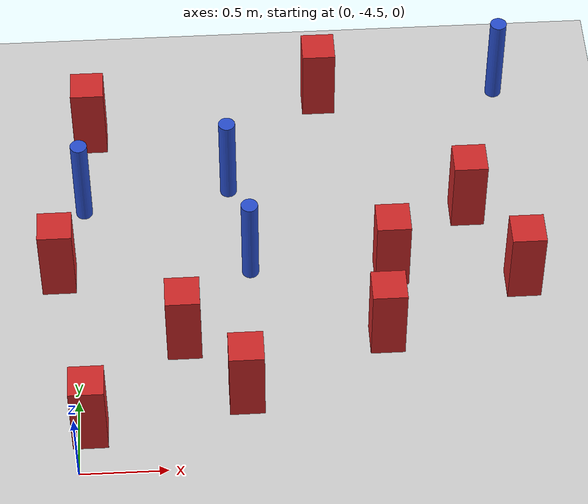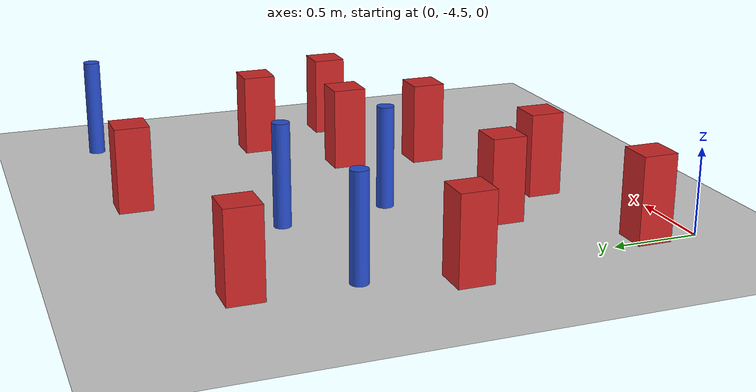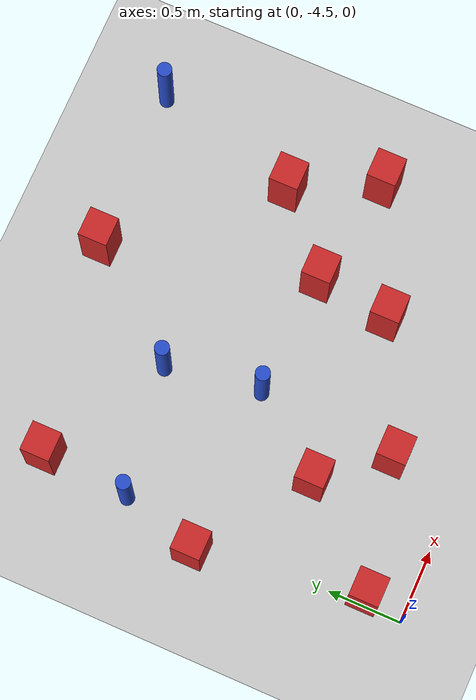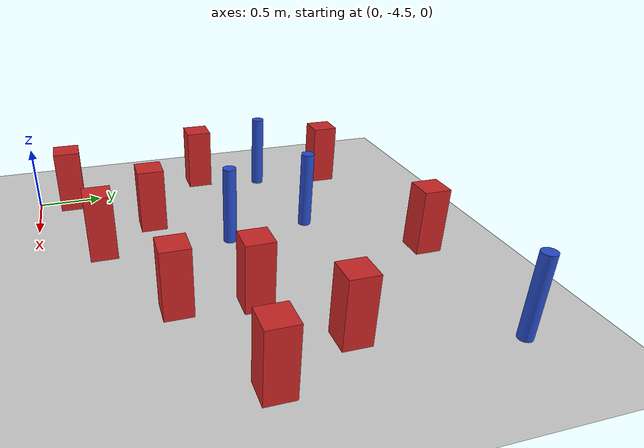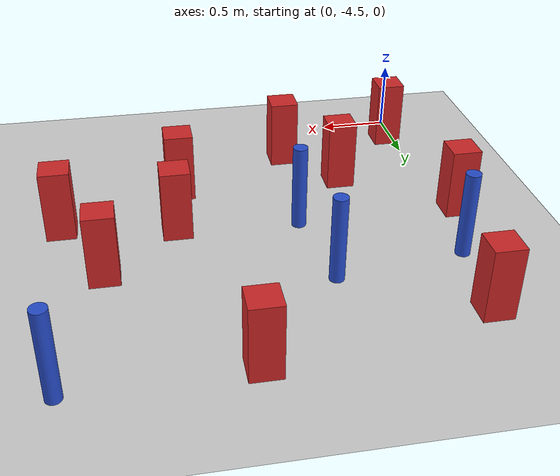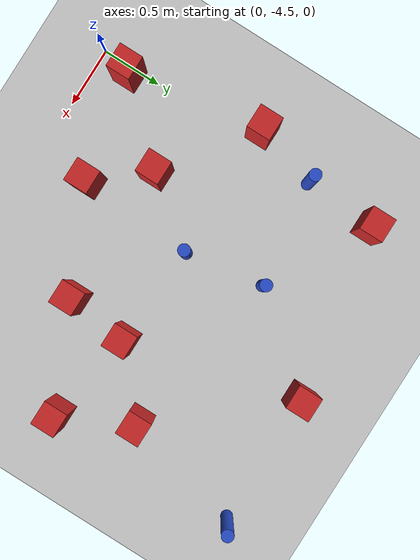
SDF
<sdf version="1.6">
 <world name="default">
  <model name="ground_plane">
   <static>1</static>
   <link name="link">
    <collision name="collision">
     <geometry><plane><normal>0 0 1</normal><size>100 100</size></plane></geometry>
     <surface><friction><ode><mu>100</mu><mu2>50</mu2></ode></friction></surface>
    </collision>
    <visual name="visual">
     <cast_shadows>0</cast_shadows>
     <geometry><plane><normal>0 0 1</normal><size>100 100</size></plane></geometry>
     <material>
      <ambient>1.0 1.0 1.0 1.0</ambient>
      <diffuse>0.8 0.8 0.8 1.0</diffuse>
      <specular>0.01 0.01 0.01 1.000000</specular>
     </material>
    </visual>
   </link>
  </model>
  <model name="square_post_obstacle9">
   <static>true</static>
   <pose>0.956388180386 -4.03698732437 8.22691968438e-08 7.22125133819e-06 -7.54495500217e-07 2.29674213826e-05</pose>
   <link name="link">
    <pose>0 0 0.25 0 -0 0</pose>
    <inertial>
     <mass>100</mass>
     <inertia>
      <ixx>0.166667</ixx>
      <ixy>0</ixy>
      <ixz>0</ixz>
      <iyy>0.166667</iyy>
      <iyz>0</iyz>
      <izz>0.166667</izz>
     </inertia>
    </inertial>
    <collision name="collision"><geometry><box><size>.2 .2 .5</size></box></geometry></collision>
    <visual name="visual">
     <geometry><box><size>.2 .2 .5</size></box></geometry>
     <material>
      <script><name>Gazebo/Red</name><uri>file://media/materials/scripts/gazebo.material</uri></script>
     </material>
    </visual>
   </link>
  </model>
  <model name="square_post_obstacle20">
   <static>true</static>
   <pose>2.62762132053 -3.26762497386 8.22691968438e-08 7.2212513382e-06 -7.54495500217e-07 2.29674213826e-05</pose>
   <link name="link">
    <pose>0 0 0.25 0 -0 0</pose>
    <inertial>
     <mass>100</mass>
     <inertia>
      <ixx>0.166667</ixx>
      <ixy>0</ixy>
      <ixz>0</ixz>
      <iyy>0.166667</iyy>
      <iyz>0</iyz>
      <izz>0.166667</izz>
     </inertia>
    </inertial>
    <collision name="collision"><geometry><box><size>.2 .2 .5</size></box></geometry></collision>
    <visual name="visual">
     <geometry><box><size>.2 .2 .5</size></box></geometry>
     <material>
      <script><name>Gazebo/Red</name><uri>file://media/materials/scripts/gazebo.material</uri></script>
     </material>
    </visual>
   </link>
  </model>
  <model name="square_post_obstacle21">
   <static>true</static>
   <pose>0.0648391307138 -4.22650328789 8.22691968438e-08 7.22125133819e-06 -7.54495500217e-07 2.29674213826e-05</pose>
   <link name="link">
    <pose>0 0 0.25 0 -0 0</pose>
    <inertial>
     <mass>100</mass>
     <inertia>
      <ixx>0.166667</ixx>
      <ixy>0</ixy>
      <ixz>0</ixz>
      <iyy>0.166667</iyy>
      <iyz>0</iyz>
      <izz>0.166667</izz>
     </inertia>
    </inertial>
    <collision name="collision"><geometry><box><size>.2 .2 .5</size></box></geometry></collision>
    <visual name="visual">
     <geometry><box><size>.2 .2 .5</size></box></geometry>
     <material>
      <script><name>Gazebo/Red</name><uri>file://media/materials/scripts/gazebo.material</uri></script>
     </material>
    </visual>
   </link>
  </model>
  <model name="pole_obstacle51">
   <static>true</static>
   <pose>0.0334881697269 -2.56659124649 2.88873142074e-08 -9.9053669241e-09 4.60219948928e-07 -1.20965994988e-07</pose>
   <link name="link">
    <pose>0 0 0.3 0 -0 0</pose>
    <inertial>
     <mass>1</mass>
     <inertia><ixx>0.145833</ixx><ixy>0</ixy><ixz>0</ixz><iyy>0.145833</iyy><iyz>0</iyz><izz>0.125</izz></inertia>
    </inertial>
    <collision name="collision">
     <geometry><cylinder><radius>0.05</radius><length>.6</length></cylinder></geometry>
    </collision>
    <visual name="visual">
     <geometry><cylinder><radius>0.05</radius><length>.6</length></cylinder></geometry>
     <material>
      <script><name>Gazebo/Blue</name><uri>file://media/materials/scripts/gazebo.material</uri></script>
     </material>
    </visual>
   </link>
  </model>
  <model name="pole_obstacle59">
   <static>true</static>
   <pose>0.915173070467 -2.43668406248 2.88873142074e-08 -9.90536689636e-09 4.60219948994e-07 -1.20965994958e-07</pose>
   <link name="link">
    <pose>0 0 0.3 0 -0 0</pose>
    <inertial>
     <mass>1</mass>
     <inertia><ixx>0.145833</ixx><ixy>0</ixy><ixz>0</ixz><iyy>0.145833</iyy><iyz>0</iyz><izz>0.125</izz></inertia>
    </inertial>
    <collision name="collision">
     <geometry><cylinder><radius>0.05</radius><length>.6</length></cylinder></geometry>
    </collision>
    <visual name="visual">
     <geometry><cylinder><radius>0.05</radius><length>.6</length></cylinder></geometry>
     <material>
      <script><name>Gazebo/Blue</name><uri>file://media/materials/scripts/gazebo.material</uri></script>
     </material>
    </visual>
   </link>
  </model>
  <model name="square_post_obstacle66">
   <static>true</static>
   <pose>0.611960380364 -3.62256733812 8.22691968438e-08 7.2212513382e-06 -7.54495500217e-07 2.29674213826e-05</pose>
   <link name="link">
    <pose>0 0 0.25 0 -0 0</pose>
    <inertial>
     <mass>100</mass>
     <inertia>
      <ixx>0.166667</ixx>
      <ixy>0</ixy>
      <ixz>0</ixz>
      <iyy>0.166667</iyy>
      <iyz>0</iyz>
      <izz>0.166667</izz>
     </inertia>
    </inertial>
    <collision name="collision"><geometry><box><size>.2 .2 .5</size></box></geometry></collision>
    <visual name="visual">
     <geometry><box><size>.2 .2 .5</size></box></geometry>
     <material>
      <script><name>Gazebo/Red</name><uri>file://media/materials/scripts/gazebo.material</uri></script>
     </material>
    </visual>
   </link>
  </model>
  <model name="pole_obstacle80">
   <static>true</static>
   <pose>2.62581547635 -1.68750381354 2.88873142074e-08 -9.90536689395e-09 4.60219949e-07 -1.20965994953e-07</pose>
   <link name="link">
    <pose>0 0 0.3 0 -0 0</pose>
    <inertial>
     <mass>1</mass>
     <inertia><ixx>0.145833</ixx><ixy>0</ixy><ixz>0</ixz><iyy>0.145833</iyy><iyz>0</iyz><izz>0.125</izz></inertia>
    </inertial>
    <collision name="collision">
     <geometry><cylinder><radius>0.05</radius><length>.6</length></cylinder></geometry>
    </collision>
    <visual name="visual">
     <geometry><cylinder><radius>0.05</radius><length>.6</length></cylinder></geometry>
     <material>
      <script><name>Gazebo/Blue</name><uri>file://media/materials/scripts/gazebo.material</uri></script>
     </material>
    </visual>
   </link>
  </model>
  <model name="square_post_obstacle88">
   <static>true</static>
   <pose>1.78910252763 -3.64294460698 8.22691968438e-08 7.2212513382e-06 -7.54495500217e-07 2.29674213826e-05</pose>
   <link name="link">
    <pose>0 0 0.25 0 -0 0</pose>
    <inertial>
     <mass>100</mass>
     <inertia>
      <ixx>0.166667</ixx>
      <ixy>0</ixy>
      <ixz>0</ixz>
      <iyy>0.166667</iyy>
      <iyz>0</iyz>
      <izz>0.166667</izz>
     </inertia>
    </inertial>
    <collision name="collision"><geometry><box><size>.2 .2 .5</size></box></geometry></collision>
    <visual name="visual">
     <geometry><box><size>.2 .2 .5</size></box></geometry>
     <material>
      <script><name>Gazebo/Red</name><uri>file://media/materials/scripts/gazebo.material</uri></script>
     </material>
    </visual>
   </link>
  </model>
  <model name="square_post_obstacle96">
   <static>true</static>
   <pose>1.8545225363 -3.13658529245 8.22691968438e-08 7.2212513382e-06 -7.54495500217e-07 2.29674213826e-05</pose>
   <link name="link">
    <pose>0 0 0.25 0 -0 0</pose>
    <inertial>
     <mass>100</mass>
     <inertia>
      <ixx>0.166667</ixx>
      <ixy>0</ixy>
      <ixz>0</ixz>
      <iyy>0.166667</iyy>
      <iyz>0</iyz>
      <izz>0.166667</izz>
     </inertia>
    </inertial>
    <collision name="collision"><geometry><box><size>.2 .2 .5</size></box></geometry></collision>
    <visual name="visual">
     <geometry><box><size>.2 .2 .5</size></box></geometry>
     <material>
      <script><name>Gazebo/Red</name><uri>file://media/materials/scripts/gazebo.material</uri></script>
     </material>
    </visual>
   </link>
  </model>
  <model name="square_post_obstacle132">
   <static>true</static>
   <pose>2.34876896496 -2.69582094003 8.22691968438e-08 7.2212513382e-06 -7.54495500217e-07 2.29674213826e-05</pose>
   <link name="link">
    <pose>0 0 0.25 0 -0 0</pose>
    <inertial>
     <mass>100</mass>
     <inertia>
      <ixx>0.166667</ixx>
      <ixy>0</ixy>
      <ixz>0</ixz>
      <iyy>0.166667</iyy>
      <iyz>0</iyz>
      <izz>0.166667</izz>
     </inertia>
    </inertial>
    <collision name="collision"><geometry><box><size>.2 .2 .5</size></box></geometry></collision>
    <visual name="visual">
     <geometry><box><size>.2 .2 .5</size></box></geometry>
     <material>
      <script><name>Gazebo/Red</name><uri>file://media/materials/scripts/gazebo.material</uri></script>
     </material>
    </visual>
   </link>
  </model>
  <model name="square_post_obstacle152">
   <static>true</static>
   <pose>0.0774229581429 -1.97156801339 8.22691968438e-08 7.2212513382e-06 -7.54495500217e-07 2.29674213826e-05</pose>
   <link name="link">
    <pose>0 0 0.25 0 -0 0</pose>
    <inertial>
     <mass>100</mass>
     <inertia>
      <ixx>0.166667</ixx>
      <ixy>0</ixy>
      <ixz>0</ixz>
      <iyy>0.166667</iyy>
      <iyz>0</iyz>
      <izz>0.166667</izz>
     </inertia>
    </inertial>
    <collision name="collision"><geometry><box><size>.2 .2 .5</size></box></geometry></collision>
    <visual name="visual">
     <geometry><box><size>.2 .2 .5</size></box></geometry>
     <material>
      <script><name>Gazebo/Red</name><uri>file://media/materials/scripts/gazebo.material</uri></script>
     </material>
    </visual>
   </link>
  </model>
  <model name="square_post_obstacle160">
   <static>true</static>
   <pose>1.50700979579 -1.71761885528 8.22691968438e-08 7.2212513382e-06 -7.54495500217e-07 2.29674213826e-05</pose>
   <link name="link">
    <pose>0 0 0.25 0 -0 0</pose>
    <inertial>
     <mass>100</mass>
     <inertia>
      <ixx>0.166667</ixx>
      <ixy>0</ixy>
      <ixz>0</ixz>
      <iyy>0.166667</iyy>
      <iyz>0</iyz>
      <izz>0.166667</izz>
     </inertia>
    </inertial>
    <collision name="collision"><geometry><box><size>.2 .2 .5</size></box></geometry></collision>
    <visual name="visual">
     <geometry><box><size>.2 .2 .5</size></box></geometry>
     <material>
      <script><name>Gazebo/Red</name><uri>file://media/materials/scripts/gazebo.material</uri></script>
     </material>
    </visual>
   </link>
  </model>
  <model name="square_post_obstacle188">
   <static>true</static>
   <pose>-0.114196231685 -3.09304722365 8.22691968438e-08 7.22125133819e-06 -7.54495500217e-07 2.29674213826e-05</pose>
   <link name="link">
    <pose>0 0 0.25 0 -0 0</pose>
    <inertial>
     <mass>100</mass>
     <inertia>
      <ixx>0.166667</ixx>
      <ixy>0</ixy>
      <ixz>0</ixz>
      <iyy>0.166667</iyy>
      <iyz>0</iyz>
      <izz>0.166667</izz>
     </inertia>
    </inertial>
    <collision name="collision"><geometry><box><size>.2 .2 .5</size></box></geometry></collision>
    <visual name="visual">
     <geometry><box><size>.2 .2 .5</size></box></geometry>
     <material>
      <script><name>Gazebo/Red</name><uri>file://media/materials/scripts/gazebo.material</uri></script>
     </material>
    </visual>
   </link>
  </model>
  <model name="pole_obstacle221">
   <static>true</static>
   <pose>1.02065000913 -3.08667997959 2.88873142074e-08 -9.90536691879e-09 4.60219948941e-07 -1.20965994981e-07</pose>
   <link name="link">
    <pose>0 0 0.3 0 -0 0</pose>
    <inertial>
     <mass>1</mass>
     <inertia><ixx>0.145833</ixx><ixy>0</ixy><ixz>0</ixz><iyy>0.145833</iyy><iyz>0</iyz><izz>0.125</izz></inertia>
    </inertial>
    <collision name="collision">
     <geometry><cylinder><radius>0.05</radius><length>.6</length></cylinder></geometry>
    </collision>
    <visual name="visual">
     <geometry><cylinder><radius>0.05</radius><length>.6</length></cylinder></geometry>
     <material>
      <script><name>Gazebo/Blue</name><uri>file://media/materials/scripts/gazebo.material</uri></script>
     </material>
    </visual>
   </link>
  </model>
 </world>
</sdf>
